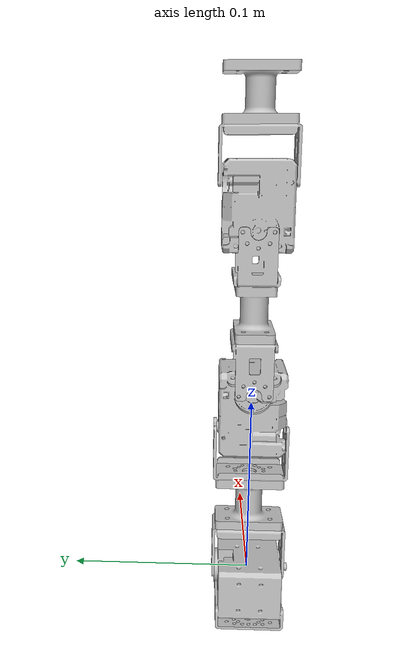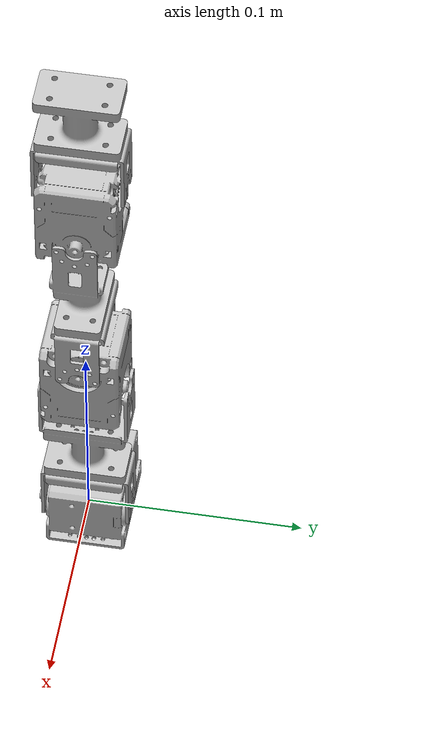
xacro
<?xml version="1.0"?>
<robot xmlns:xacro="http://www.ros.org/wiki/xacro" name="mani">
    <xacro:arg name="initial_positions_file" default="initial_positions.yaml" />

    <!-- Import mani urdf file -->
    <xacro:include filename="$(find mani_urdf)/urdf/mani.urdf.xacro" />

    <!-- Import control_xacro -->
    <xacro:include filename="mani.ros2_control.xacro" />

    <xacro:mani_ros2_control name="FakeSystem" initial_positions_file="$(arg initial_positions_file)"/>

</robot>

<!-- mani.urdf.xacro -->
<robot name="mani" xmlns:xacro="http://www.ros.org/wiki/xacro">

    <!-- Color -->
    <material name="sky_blue">
        <color rgba="0.53 0.81 0.92 1"/>
    </material>
    <material name="red">
        <color rgba="1 0 0 1"/>
    </material>
    <material name="green">
        <color rgba="0 1 0 1"/>
    </material>
    <material name="gray">
        <color rgba="0.5 0.5 0.5 1"/>
    </material>
    <material name="silver">
        <color rgba="0.75 0.75 0.75 1"/>
    </material>

    <!-- base_link  -->
<link name="base_link">
  <inertial>
    <origin xyz="-0.011647649438883093 -0.00048239768523579765 -0.0011682250103256563" rpy="0 0 0"/>
    <mass value="0.09172816180539987"/>
    <inertia ixx="1.7e-05" iyy="2.4e-05" izz="2.6e-05" ixy="-0.0" iyz="0.0" ixz="-0.0"/>
  </inertial>
  <visual>
    <origin xyz="0 0 0" rpy="0 0 0"/>
    <geometry>
      <mesh filename="package://mani_urdf/meshes/mani/base_link.stl" scale="0.001 0.001 0.001"/>
    </geometry>
    <material name="silver"/>
  </visual>
  <collision>
    <origin xyz="0 0 0" rpy="0 0 0"/>
    <geometry>
      <mesh filename="package://mani_urdf/meshes/mani/base_link.stl" scale="0.001 0.001 0.001"/>
    </geometry>
  </collision>
</link>

<link name="link1_1">
  <inertial>
    <origin xyz="5.4085382359644335e-14 0.020499999999979507 0.043000000000165024" rpy="0 0 0"/>
    <mass value="0.033000215200095356"/>
    <inertia ixx="1.4e-05" iyy="1.1e-05" izz="6e-06" ixy="-0.0" iyz="0.0" ixz="0.0"/>
  </inertial>
  <visual>
    <origin xyz="-0.0 0.0205 -0.0" rpy="0 0 0"/>
    <geometry>
      <mesh filename="package://mani_urdf/meshes/mani/link1_1.stl" scale="0.001 0.001 0.001"/>
    </geometry>
    <material name="silver"/>
  </visual>
  <collision>
    <origin xyz="-0.0 0.0205 -0.0" rpy="0 0 0"/>
    <geometry>
      <mesh filename="package://mani_urdf/meshes/mani/link1_1.stl" scale="0.001 0.001 0.001"/>
    </geometry>
  </collision>
</link>

<link name="link2_1">
  <inertial>
    <origin xyz="0.0006314929630786327 -0.018368609680172048 0.011999832944530234" rpy="0 0 0"/>
    <mass value="0.10199970916257842"/>
    <inertia ixx="2.8e-05" iyy="2.8e-05" izz="2e-05" ixy="1e-06" iyz="0.0" ixz="-0.0"/>
  </inertial>
  <visual>
    <origin xyz="-0.0 -0.019 -0.086" rpy="0 0 0"/>
    <geometry>
      <mesh filename="package://mani_urdf/meshes/mani/link2_1.stl" scale="0.001 0.001 0.001"/>
    </geometry>
    <material name="silver"/>
  </visual>
  <collision>
    <origin xyz="-0.0 -0.019 -0.086" rpy="0 0 0"/>
    <geometry>
      <mesh filename="package://mani_urdf/meshes/mani/link2_1.stl" scale="0.001 0.001 0.001"/>
    </geometry>
  </collision>
</link>

<link name="link3_1">
  <inertial>
    <origin xyz="-0.019000000000020462 -5.3987030398996446e-14 0.04299999999983527" rpy="0 0 0"/>
    <mass value="0.03300021520009532"/>
    <inertia ixx="1.1e-05" iyy="1.4e-05" izz="6e-06" ixy="0.0" iyz="-0.0" ixz="-0.0"/>
  </inertial>
  <visual>
    <origin xyz="-0.019 0.0 -0.11" rpy="0 0 0"/>
    <geometry>
      <mesh filename="package://mani_urdf/meshes/mani/link3_1.stl" scale="0.001 0.001 0.001"/>
    </geometry>
    <material name="silver"/>
  </visual>
  <collision>
    <origin xyz="-0.019 0.0 -0.11" rpy="0 0 0"/>
    <geometry>
      <mesh filename="package://mani_urdf/meshes/mani/link3_1.stl" scale="0.001 0.001 0.001"/>
    </geometry>
  </collision>
</link>

<link name="link4_1">
  <inertial>
    <origin xyz="-0.018368507464034477 -0.0006313903232927855 0.012000165844984312" rpy="0 0 0"/>
    <mass value="0.10199970647517996"/>
    <inertia ixx="2.8e-05" iyy="2.8e-05" izz="2e-05" ixy="-1e-06" iyz="0.0" ixz="0.0"/>
  </inertial>
  <visual>
    <origin xyz="-0.019 -0.0 -0.196" rpy="0 0 0"/>
    <geometry>
      <mesh filename="package://mani_urdf/meshes/mani/link4_1.stl" scale="0.001 0.001 0.001"/>
    </geometry>
    <material name="silver"/>
  </visual>
  <collision>
    <origin xyz="-0.019 -0.0 -0.196" rpy="0 0 0"/>
    <geometry>
      <mesh filename="package://mani_urdf/meshes/mani/link4_1.stl" scale="0.001 0.001 0.001"/>
    </geometry>
  </collision>
</link>

<link name="link5_1">
  <inertial>
    <origin xyz="7.61979708561022e-14 0.019000000000033313 0.03834657445375009" rpy="0 0 0"/>
    <mass value="0.02739554319054945"/>
    <inertia ixx="9e-06" iyy="6e-06" izz="4e-06" ixy="0.0" iyz="0.0" ixz="-0.0"/>
  </inertial>
  <visual>
    <origin xyz="-0.0 0.019 -0.22" rpy="0 0 0"/>
    <geometry>
      <mesh filename="package://mani_urdf/meshes/mani/link5_1.stl" scale="0.001 0.001 0.001"/>
    </geometry>
    <material name="silver"/>
  </visual>
  <collision>
    <origin xyz="-0.0 0.019 -0.22" rpy="0 0 0"/>
    <geometry>
      <mesh filename="package://mani_urdf/meshes/mani/link5_1.stl" scale="0.001 0.001 0.001"/>
    </geometry>
  </collision>
</link>

<joint name="joint_1" type="continuous">
  <origin xyz="0.0 -0.0205 0.0" rpy="0 0 0"/>
  <parent link="base_link"/>
  <child link="link1_1"/>
  <axis xyz="-0.0 1.0 -0.0"/>
</joint>

<joint name="joint_2" type="continuous">
  <origin xyz="0.0 0.0395 0.086" rpy="0 0 0"/>
  <parent link="link1_1"/>
  <child link="link2_1"/>
  <axis xyz="0.0 1.0 0.0"/>
</joint>

<joint name="joint_3" type="continuous">
  <origin xyz="0.019 -0.019 0.024" rpy="0 0 0"/>
  <parent link="link2_1"/>
  <child link="link3_1"/>
  <axis xyz="1.0 -0.0 -0.0"/>
</joint>

<joint name="joint_4" type="continuous">
  <origin xyz="0.0 0.0 0.086" rpy="0 0 0"/>
  <parent link="link3_1"/>
  <child link="link4_1"/>
  <axis xyz="1.0 -0.0 -0.0"/>
</joint>

<joint name="joint_5" type="continuous">
  <origin xyz="-0.019 -0.019 0.024" rpy="0 0 0"/>
  <parent link="link4_1"/>
  <child link="link5_1"/>
  <axis xyz="-0.0 -1.0 -0.0"/>
</joint>

</robot>
